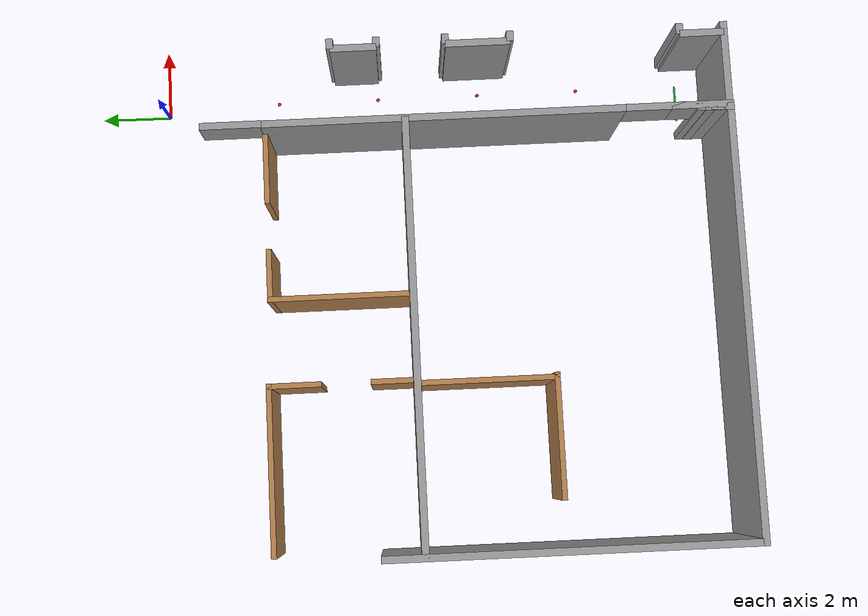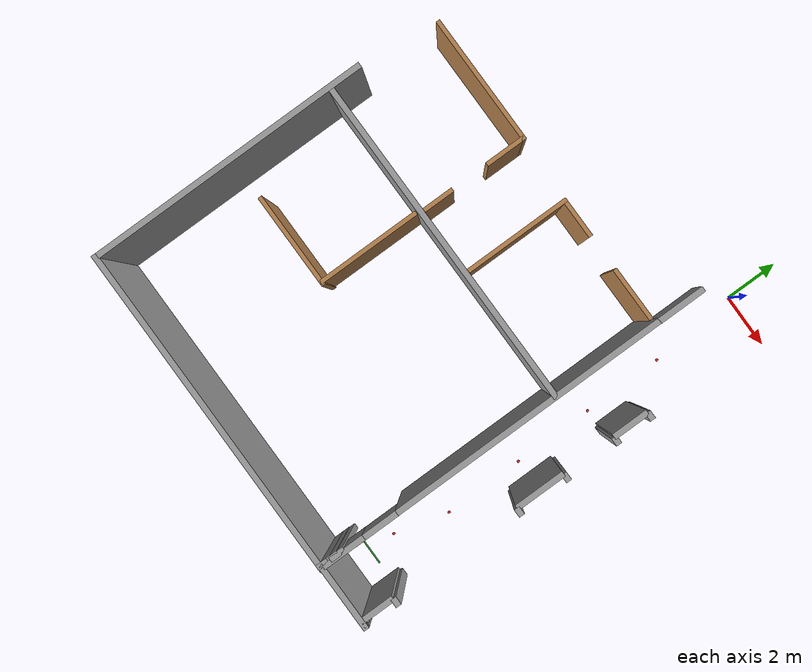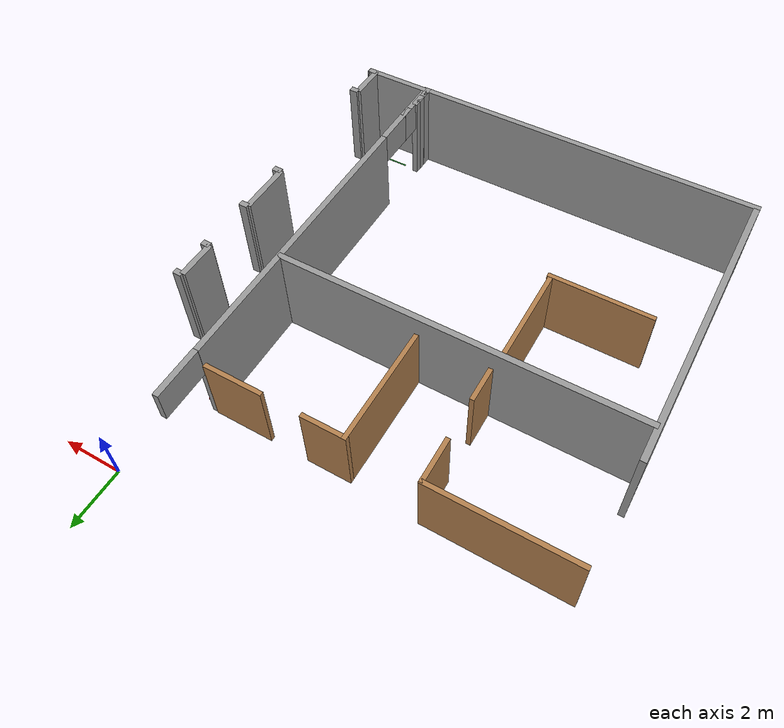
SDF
<sdf version="1.6">
 <world name="square_world">
  <model name="wall4">
   <static>1</static>
   <pose>0 -16.1 1.6 0 -0 0</pose>
   <link name="wall_link">
    <inertial><mass>10000</mass></inertial>
    <collision name="wall_collision">
     <geometry><box><size>2.36 0.2 3.2</size></box></geometry>
     <surface><contact><collide_bitmask>2</collide_bitmask></contact></surface>
    </collision>
    <visual name="wall_visual">
     <geometry><box><size>2.36 0.2 3.2</size></box></geometry>
     <material><script><name>Gazebo/Grey</name><uri>__default__</uri></script></material>
    </visual>
   </link>
  </model>
  <model name="wall7">
   <static>1</static>
   <pose>1.0315 -16.1 1.6 0 -0 0</pose>
   <link name="wall_link">
    <inertial><mass>10000</mass></inertial>
    <collision name="wall_collision">
     <geometry><box><size>0.297 0.2 3.2</size></box></geometry>
     <surface><contact><collide_bitmask>2</collide_bitmask></contact></surface>
    </collision>
    <visual name="wall_visual">
     <geometry><box><size>0.297 0.2 3.2</size></box></geometry>
     <material><script><name>Gazebo/Grey</name><uri>__default__</uri></script></material>
    </visual>
   </link>
  </model>
  <model name="wall8">
   <static>1</static>
   <pose>1.0315 -14.86 1.6 0 -0 0</pose>
   <link name="wall_link">
    <inertial><mass>10000</mass></inertial>
    <collision name="wall_collision">
     <geometry><box><size>0.297 0.2 3.2</size></box></geometry>
     <surface><contact><collide_bitmask>2</collide_bitmask></contact></surface>
    </collision>
    <visual name="wall_visual">
     <geometry><box><size>0.297 0.2 3.2</size></box></geometry>
     <material><script><name>Gazebo/Grey</name><uri>__default__</uri></script></material>
    </visual>
   </link>
  </model>
  <model name="wall9">
   <static>1</static>
   <pose>0.883 -15.48 1.6 0 0 -1.5708</pose>
   <link name="wall_link">
    <inertial><mass>10000</mass></inertial>
    <collision name="wall_collision">
     <geometry><box><size>1.24 0.2 3.2</size></box></geometry>
     <surface><contact><collide_bitmask>2</collide_bitmask></contact></surface>
    </collision>
    <visual name="wall_visual">
     <geometry><box><size>1.24 0.2 3.2</size></box></geometry>
     <material><script><name>Gazebo/Grey</name><uri>__default__</uri></script></material>
    </visual>
   </link>
  </model>
  <model name="wall10">
   <static>1</static>
   <pose>1.035 -10.1 1.6 0 -0 0</pose>
   <link name="wall_link">
    <inertial><mass>10000</mass></inertial>
    <collision name="wall_collision">
     <geometry><box><size>0.29 0.2 3.2</size></box></geometry>
     <surface><contact><collide_bitmask>2</collide_bitmask></contact></surface>
    </collision>
    <visual name="wall_visual">
     <geometry><box><size>0.29 0.2 3.2</size></box></geometry>
     <material><script><name>Gazebo/Grey</name><uri>__default__</uri></script></material>
    </visual>
   </link>
  </model>
  <model name="wall11">
   <static>1</static>
   <pose>1.035 -8.28 1.6 0 -0 0</pose>
   <link name="wall_link">
    <inertial><mass>10000</mass></inertial>
    <collision name="wall_collision">
     <geometry><box><size>0.29 0.2 3.2</size></box></geometry>
     <surface><contact><collide_bitmask>2</collide_bitmask></contact></surface>
    </collision>
    <visual name="wall_visual">
     <geometry><box><size>0.29 0.2 3.2</size></box></geometry>
     <material><script><name>Gazebo/Grey</name><uri>__default__</uri></script></material>
    </visual>
   </link>
  </model>
  <model name="wall12">
   <static>1</static>
   <pose>0.89 -9.19 1.6 0 0 -1.5708</pose>
   <link name="wall_link">
    <inertial><mass>10000</mass></inertial>
    <collision name="wall_collision">
     <geometry><box><size>1.82 0.2 3.2</size></box></geometry>
     <surface><contact><collide_bitmask>2</collide_bitmask></contact></surface>
    </collision>
    <visual name="wall_visual">
     <geometry><box><size>1.82 0.2 3.2</size></box></geometry>
     <material><script><name>Gazebo/Grey</name><uri>__default__</uri></script></material>
    </visual>
   </link>
  </model>
  <model name="wall13">
   <static>1</static>
   <pose>1.0365 -6.34 1.6 0 -0 0</pose>
   <link name="wall_link">
    <inertial><mass>10000</mass></inertial>
    <collision name="wall_collision">
     <geometry><box><size>0.287 0.2 3.2</size></box></geometry>
     <surface><contact><collide_bitmask>2</collide_bitmask></contact></surface>
    </collision>
    <visual name="wall_visual">
     <geometry><box><size>0.287 0.2 3.2</size></box></geometry>
     <material><script><name>Gazebo/Grey</name><uri>__default__</uri></script></material>
    </visual>
   </link>
  </model>
  <model name="wall14">
   <static>1</static>
   <pose>1.0365 -5.03 1.6 0 -0 0</pose>
   <link name="wall_link">
    <inertial><mass>10000</mass></inertial>
    <collision name="wall_collision">
     <geometry><box><size>0.287 0.2 3.2</size></box></geometry>
     <surface><contact><collide_bitmask>2</collide_bitmask></contact></surface>
    </collision>
    <visual name="wall_visual">
     <geometry><box><size>0.287 0.2 3.2</size></box></geometry>
     <material><script><name>Gazebo/Grey</name><uri>__default__</uri></script></material>
    </visual>
   </link>
  </model>
  <model name="wall15">
   <static>1</static>
   <pose>0.893 -5.685 1.6 0 0 -1.5708</pose>
   <link name="wall_link">
    <inertial><mass>10000</mass></inertial>
    <collision name="wall_collision">
     <geometry><box><size>1.31 0.2 3.2</size></box></geometry>
     <surface><contact><collide_bitmask>2</collide_bitmask></contact></surface>
    </collision>
    <visual name="wall_visual">
     <geometry><box><size>1.31 0.2 3.2</size></box></geometry>
     <material><script><name>Gazebo/Grey</name><uri>__default__</uri></script></material>
    </visual>
   </link>
  </model>
  <model name="wall50">
   <static>1</static>
   <pose>-7.17 -7.06 1.6 0 -0 0</pose>
   <link name="wall_link">
    <inertial><mass>10000</mass></inertial>
    <collision name="wall_collision">
     <geometry><box><size>12.07 0.2 3.2</size></box></geometry>
     <surface><contact><collide_bitmask>2</collide_bitmask></contact></surface>
    </collision>
    <visual name="wall_visual">
     <geometry><box><size>12.07 0.2 3.2</size></box></geometry>
     <material><script><name>Gazebo/Grey</name><uri>__default__</uri></script></material>
    </visual>
   </link>
  </model>
  <model name="wall488">
   <static>1</static>
   <pose>-1.18 -2.195 2.6425 0 0 -1.5708</pose>
   <link name="wall_link">
    <inertial><mass>10000</mass></inertial>
    <collision name="wall_collision">
     <geometry><box><size>1.73 0.2 1.115</size></box></geometry>
     <surface><contact><collide_bitmask>2</collide_bitmask></contact></surface>
    </collision>
    <visual name="wall_visual">
     <geometry><box><size>1.73 0.2 1.115</size></box></geometry>
     <material><script><name>Gazebo/Grey</name><uri>__default__</uri></script></material>
    </visual>
   </link>
  </model>
  <model name="wall528">
   <static>1</static>
   <pose>-0.25 -15.3 0 0 -0 0</pose>
   <link name="wall_link">
    <inertial><mass>10000</mass></inertial>
    <collision name="wall_collision">
     <geometry><box><size>1.06 0.05 0.001</size></box></geometry>
     <surface><contact><collide_bitmask>2</collide_bitmask></contact></surface>
    </collision>
    <visual name="wall_visual">
     <geometry><box><size>1.06 0.05 0.001</size></box></geometry>
     <material><script><name>Gazebo/Green</name><uri>__default__</uri></script></material>
    </visual>
   </link>
  </model>
  <model name="wall988">
   <static>1</static>
   <pose>0.28 -12.3 0 0 -0 0</pose>
   <link name="wall_link">
    <inertial><mass>10000</mass></inertial>
    <collision name="wall_collision">
     <geometry><cylinder><radius>0.05</radius><length>0.001</length></cylinder></geometry>
     <surface><contact><collide_bitmask>2</collide_bitmask></contact></surface>
    </collision>
    <visual name="wall_visual">
     <geometry><cylinder><radius>0.05</radius><length>0.001</length></cylinder></geometry>
     <material><script><name>Gazebo/Red</name><uri>__default__</uri></script></material>
    </visual>
   </link>
  </model>
  <model name="wall998">
   <static>1</static>
   <pose>0.28 -9.3 0 0 -0 0</pose>
   <link name="wall_link">
    <inertial><mass>10000</mass></inertial>
    <collision name="wall_collision">
     <geometry><cylinder><radius>0.05</radius><length>0.001</length></cylinder></geometry>
     <surface><contact><collide_bitmask>2</collide_bitmask></contact></surface>
    </collision>
    <visual name="wall_visual">
     <geometry><cylinder><radius>0.05</radius><length>0.001</length></cylinder></geometry>
     <material><script><name>Gazebo/Red</name><uri>__default__</uri></script></material>
    </visual>
   </link>
  </model>
  <model name="wall1008">
   <static>1</static>
   <pose>0.28 -6.3 0 0 -0 0</pose>
   <link name="wall_link">
    <inertial><mass>10000</mass></inertial>
    <collision name="wall_collision">
     <geometry><cylinder><radius>0.05</radius><length>0.001</length></cylinder></geometry>
     <surface><contact><collide_bitmask>2</collide_bitmask></contact></surface>
    </collision>
    <visual name="wall_visual">
     <geometry><cylinder><radius>0.05</radius><length>0.001</length></cylinder></geometry>
     <material><script><name>Gazebo/Red</name><uri>__default__</uri></script></material>
    </visual>
   </link>
  </model>
  <model name="wall1018">
   <static>1</static>
   <pose>0.28 -3.3 0 0 -0 0</pose>
   <link name="wall_link">
    <inertial><mass>10000</mass></inertial>
    <collision name="wall_collision">
     <geometry><cylinder><radius>0.05</radius><length>0.001</length></cylinder></geometry>
     <surface><contact><collide_bitmask>2</collide_bitmask></contact></surface>
    </collision>
    <visual name="wall_visual">
     <geometry><cylinder><radius>0.05</radius><length>0.001</length></cylinder></geometry>
     <material><script><name>Gazebo/Red</name><uri>__default__</uri></script></material>
    </visual>
   </link>
  </model>
  <model name="wall1078">
   <static>1</static>
   <pose>-0.78 -12.3 0 0 -0 0</pose>
   <link name="wall_link">
    <inertial><mass>10000</mass></inertial>
    <collision name="wall_collision">
     <geometry><cylinder><radius>0.05</radius><length>0.001</length></cylinder></geometry>
     <surface><contact><collide_bitmask>2</collide_bitmask></contact></surface>
    </collision>
    <visual name="wall_visual">
     <geometry><cylinder><radius>0.05</radius><length>0.001</length></cylinder></geometry>
     <material><script><name>Gazebo/Red</name><uri>__default__</uri></script></material>
    </visual>
   </link>
  </model>
  <model name="wall1088">
   <static>1</static>
   <pose>-0.78 -9.3 0 0 -0 0</pose>
   <link name="wall_link">
    <inertial><mass>10000</mass></inertial>
    <collision name="wall_collision">
     <geometry><cylinder><radius>0.05</radius><length>0.001</length></cylinder></geometry>
     <surface><contact><collide_bitmask>2</collide_bitmask></contact></surface>
    </collision>
    <visual name="wall_visual">
     <geometry><cylinder><radius>0.05</radius><length>0.001</length></cylinder></geometry>
     <material><script><name>Gazebo/Red</name><uri>__default__</uri></script></material>
    </visual>
   </link>
  </model>
  <model name="wall1098">
   <static>1</static>
   <pose>-0.78 -6.3 0 0 -0 0</pose>
   <link name="wall_link">
    <inertial><mass>10000</mass></inertial>
    <collision name="wall_collision">
     <geometry><cylinder><radius>0.05</radius><length>0.001</length></cylinder></geometry>
     <surface><contact><collide_bitmask>2</collide_bitmask></contact></surface>
    </collision>
    <visual name="wall_visual">
     <geometry><cylinder><radius>0.05</radius><length>0.001</length></cylinder></geometry>
     <material><script><name>Gazebo/Red</name><uri>__default__</uri></script></material>
    </visual>
   </link>
  </model>
  <model name="wall1108">
   <static>1</static>
   <pose>-0.78 -3.3 0 0 -0 0</pose>
   <link name="wall_link">
    <inertial><mass>10000</mass></inertial>
    <collision name="wall_collision">
     <geometry><cylinder><radius>0.05</radius><length>0.001</length></cylinder></geometry>
     <surface><contact><collide_bitmask>2</collide_bitmask></contact></surface>
    </collision>
    <visual name="wall_visual">
     <geometry><cylinder><radius>0.05</radius><length>0.001</length></cylinder></geometry>
     <material><script><name>Gazebo/Red</name><uri>__default__</uri></script></material>
    </visual>
   </link>
  </model>
  <model name="wall1288">
   <static>1</static>
   <pose>-0.25 -14.3 0 0 -0 0</pose>
   <link name="wall_link">
    <inertial><mass>10000</mass></inertial>
    <collision name="wall_collision">
     <geometry><cylinder><radius>0.05</radius><length>0.001</length></cylinder></geometry>
     <surface><contact><collide_bitmask>2</collide_bitmask></contact></surface>
    </collision>
    <visual name="wall_visual">
     <geometry><cylinder><radius>0.05</radius><length>0.001</length></cylinder></geometry>
     <material><script><name>Gazebo/Red</name><uri>__default__</uri></script></material>
    </visual>
   </link>
  </model>
  <model name="wall49_clone_0">
   <static>1</static>
   <pose>-13.2037 -10.9678 1.6 0 0 -1.5708</pose>
   <link name="wall_link">
    <inertial><mass>10000</mass></inertial>
    <collision name="wall_collision">
     <geometry><box><size>10.18 0.2 3.2</size></box></geometry>
     <surface><contact><collide_bitmask>2</collide_bitmask></contact></surface>
    </collision>
    <visual name="wall_visual">
     <geometry><box><size>10.18 0.2 3.2</size></box></geometry>
     <material><script><name>Gazebo/Grey</name><uri>__default__</uri></script></material>
    </visual>
   </link>
  </model>
  <model name="wall50_clone">
   <static>1</static>
   <pose>-7.27251 -16.1255 1.6 0 -0 0</pose>
   <link name="wall_link">
    <inertial><mass>10000</mass></inertial>
    <collision name="wall_collision">
     <geometry><box><size>12.07 0.2 3.2</size></box></geometry>
     <surface><contact><collide_bitmask>2</collide_bitmask></contact></surface>
    </collision>
    <visual name="wall_visual">
     <geometry><box><size>12.07 0.2 3.2</size></box></geometry>
     <material><script><name>Gazebo/Grey</name><uri>__default__</uri></script></material>
    </visual>
   </link>
  </model>
  <model name="wall488_clone">
   <static>1</static>
   <pose>-1.18327 -14.0717 2.6425 0 0 -1.5708</pose>
   <link name="wall_link">
    <inertial><mass>10000</mass></inertial>
    <collision name="wall_collision">
     <geometry><box><size>1.73 0.2 1.115</size></box></geometry>
     <surface><contact><collide_bitmask>2</collide_bitmask></contact></surface>
    </collision>
    <visual name="wall_visual">
     <geometry><box><size>1.73 0.2 1.115</size></box></geometry>
     <material><script><name>Gazebo/Grey</name><uri>__default__</uri></script></material>
    </visual>
   </link>
  </model>
  <model name="wall488_clone_0">
   <static>1</static>
   <pose>-1.18718 -15.358 2.6425 0 0 -1.5708</pose>
   <link name="wall_link">
    <inertial><mass>10000</mass></inertial>
    <collision name="wall_collision">
     <geometry><box><size>1.73 0.2 1.115</size></box></geometry>
     <surface><contact><collide_bitmask>2</collide_bitmask></contact></surface>
    </collision>
    <visual name="wall_visual">
     <geometry><box><size>1.73 0.2 1.115</size></box></geometry>
     <material><script><name>Gazebo/Grey</name><uri>__default__</uri></script></material>
    </visual>
   </link>
  </model>
  <model name="wall40_clone">
   <static>1</static>
   <pose>-1.26111 -15.6993 1.6 0 0 -1.5708</pose>
   <link name="wall_link">
    <inertial><mass>10000</mass></inertial>
    <collision name="wall_collision">
     <geometry><box><size>0.555 0.2 3.2</size></box></geometry>
     <surface><contact><collide_bitmask>2</collide_bitmask></contact></surface>
    </collision>
    <visual name="wall_visual">
     <geometry><box><size>0.555 0.2 3.2</size></box></geometry>
     <material><script><name>Gazebo/Grey</name><uri>__default__</uri></script></material>
    </visual>
   </link>
  </model>
  <model name="wall40_clone_0">
   <static>1</static>
   <pose>-1.26317 -15.9502 1.6 0 0 -1.5708</pose>
   <link name="wall_link">
    <inertial><mass>10000</mass></inertial>
    <collision name="wall_collision">
     <geometry><box><size>0.555 0.2 3.2</size></box></geometry>
     <surface><contact><collide_bitmask>2</collide_bitmask></contact></surface>
    </collision>
    <visual name="wall_visual">
     <geometry><box><size>0.555 0.2 3.2</size></box></geometry>
     <material><script><name>Gazebo/Grey</name><uri>__default__</uri></script></material>
    </visual>
   </link>
  </model>
  <model name="wall40_clone_1">
   <static>1</static>
   <pose>-1.24714 -15.4722 1.6 0 0 -1.5708</pose>
   <link name="wall_link">
    <inertial><mass>10000</mass></inertial>
    <collision name="wall_collision">
     <geometry><box><size>0.555 0.2 3.2</size></box></geometry>
     <surface><contact><collide_bitmask>2</collide_bitmask></contact></surface>
    </collision>
    <visual name="wall_visual">
     <geometry><box><size>0.555 0.2 3.2</size></box></geometry>
     <material><script><name>Gazebo/Grey</name><uri>__default__</uri></script></material>
    </visual>
   </link>
  </model>
  <model name="MiddleRoom">
   <pose>-7.18811 -4.95738 0 0 -0 0</pose>
   <link name="Wall_28">
    <collision name="Wall_28_Collision">
     <geometry><box><size>4 0.15 2.5</size></box></geometry>
     <pose>0 0 1.25 0 -0 0</pose>
    </collision>
    <visual name="Wall_28_Visual">
     <pose>0 0 1.25 0 -0 0</pose>
     <geometry><box><size>4 0.15 2.5</size></box></geometry>
     <material>
      <script><uri>file://media/materials/scripts/gazebo.material</uri><name>Gazebo/Wood</name></script>
      <ambient>1 1 1 1</ambient>
     </material>
     <meta><layer>0</layer></meta>
    </visual>
    <pose>1.18206 -0.046401 0 0 0 -1.5708</pose>
   </link>
   <link name="Wall_30">
    <collision name="Wall_30_Collision">
     <geometry><box><size>1.5 0.15 2.5</size></box></geometry>
     <pose>0 0 1.25 0 -0 0</pose>
    </collision>
    <visual name="Wall_30_Visual">
     <pose>0 0 1.25 0 -0 0</pose>
     <geometry><box><size>1.5 0.15 2.5</size></box></geometry>
     <material>
      <script><uri>file://media/materials/scripts/gazebo.material</uri><name>Gazebo/Wood</name></script>
      <ambient>1 1 1 1</ambient>
     </material>
     <meta><layer>0</layer></meta>
    </visual>
    <pose>1.85706 1.8786 0 0 -0 0</pose>
   </link>
   <link name="Wall_32">
    <collision name="Wall_32_Collision">
     <geometry><box><size>2 0.15 2.5</size></box></geometry>
     <pose>0 0 1.25 0 -0 0</pose>
    </collision>
    <visual name="Wall_32_Visual">
     <pose>0 0 1.25 0 -0 0</pose>
     <geometry><box><size>2 0.15 2.5</size></box></geometry>
     <material>
      <script><uri>file://media/materials/scripts/gazebo.material</uri><name>Gazebo/Wood</name></script>
      <ambient>1 1 1 1</ambient>
     </material>
     <meta><layer>0</layer></meta>
    </visual>
    <pose>4.90847 1.86997 0 0 -0 0</pose>
   </link>
   <link name="Wall_35">
    <collision name="Wall_35_Collision">
     <geometry><box><size>1.25 0.15 2.5</size></box></geometry>
     <pose>0 0 1.25 0 -0 0</pose>
    </collision>
    <visual name="Wall_35_Visual">
     <pose>0 0 1.25 0 -0 0</pose>
     <geometry><box><size>1.25 0.15 2.5</size></box></geometry>
     <material>
      <script><uri>file://media/materials/scripts/gazebo.material</uri><name>Gazebo/Wood</name></script>
      <ambient>1 1 1 1</ambient>
     </material>
     <meta><layer>0</layer></meta>
    </visual>
    <pose>-1.23347 -1.44608 0 0 -0 1.5708</pose>
   </link>
   <link name="Wall_37">
    <collision name="Wall_37_Collision">
     <geometry><box><size>1.5 0.15 2.5</size></box></geometry>
     <pose>0 0 1.25 0 -0 0</pose>
    </collision>
    <visual name="Wall_37_Visual">
     <pose>0 0 1.25 0 -0 0</pose>
     <geometry><box><size>1.5 0.15 2.5</size></box></geometry>
     <material>
      <script><uri>file://media/materials/scripts/gazebo.material</uri><name>Gazebo/Wood</name></script>
      <ambient>1 1 1 1</ambient>
     </material>
     <meta><layer>0</layer></meta>
    </visual>
    <pose>-1.23347 1.2859 0 0 -0 1.5708</pose>
   </link>
   <link name="Wall_40">
    <collision name="Wall_40_Collision">
     <geometry><box><size>4.75 0.15 2.5</size></box></geometry>
     <pose>0 0 1.25 0 -0 0</pose>
    </collision>
    <visual name="Wall_40_Visual">
     <pose>0 0 1.25 0 -0 0</pose>
     <geometry><box><size>4.75 0.15 2.5</size></box></geometry>
     <material>
      <script><uri>file://media/materials/scripts/gazebo.material</uri><name>Gazebo/Wood</name></script>
      <ambient>1 1 1 1</ambient>
     </material>
     <meta><layer>0</layer></meta>
    </visual>
    <pose>-3.53347 1.99608 0 0 -0 3.14159</pose>
   </link>
   <static>1</static>
  </model>
  <model name="RightRoom">
   <pose>-10.133 -9.03329 0 0 -0 0</pose>
   <link name="Wall_42">
    <collision name="Wall_42_Collision">
     <geometry><box><size>3.9465 0.15 2.5</size></box></geometry>
     <pose>0 0 1.25 0 -0 0</pose>
    </collision>
    <visual name="Wall_42_Visual">
     <pose>0 0 1.25 0 -0 0</pose>
     <geometry><box><size>3.9465 0.15 2.5</size></box></geometry>
     <material>
      <script><uri>file://media/materials/scripts/gazebo.material</uri><name>Gazebo/Wood</name></script>
      <ambient>1 1 1 1</ambient>
     </material>
     <meta><layer>0</layer></meta>
    </visual>
    <pose>1.6215 0 0 0 0 -1.5708</pose>
   </link>
   <link name="Wall_44">
    <collision name="Wall_44_Collision">
     <geometry><box><size>3.5 0.15 2.5</size></box></geometry>
     <pose>0 0 1.25 0 -0 0</pose>
    </collision>
    <visual name="Wall_44_Visual">
     <pose>0 0 1.25 0 -0 0</pose>
     <geometry><box><size>3.5 0.15 2.5</size></box></geometry>
     <material>
      <script><uri>file://media/materials/scripts/gazebo.material</uri><name>Gazebo/Wood</name></script>
      <ambient>1 1 1 1</ambient>
     </material>
     <meta><layer>0</layer></meta>
    </visual>
    <pose>0 -1.89825 0 0 -0 3.14159</pose>
   </link>
   <static>1</static>
  </model>
  <model name="wall49_clone_1">
   <static>1</static>
   <pose>-1.1878 -8.12373 1.6 0 0 -1.5708</pose>
   <link name="wall_link">
    <inertial><mass>10000</mass></inertial>
    <collision name="wall_collision">
     <geometry><box><size>10.18 0.2 3.2</size></box></geometry>
     <surface><contact><collide_bitmask>2</collide_bitmask></contact></surface>
    </collision>
    <visual name="wall_visual">
     <geometry><box><size>10.18 0.2 3.2</size></box></geometry>
     <material><script><name>Gazebo/Grey</name><uri>__default__</uri></script></material>
    </visual>
   </link>
  </model>
 </world>
</sdf>
